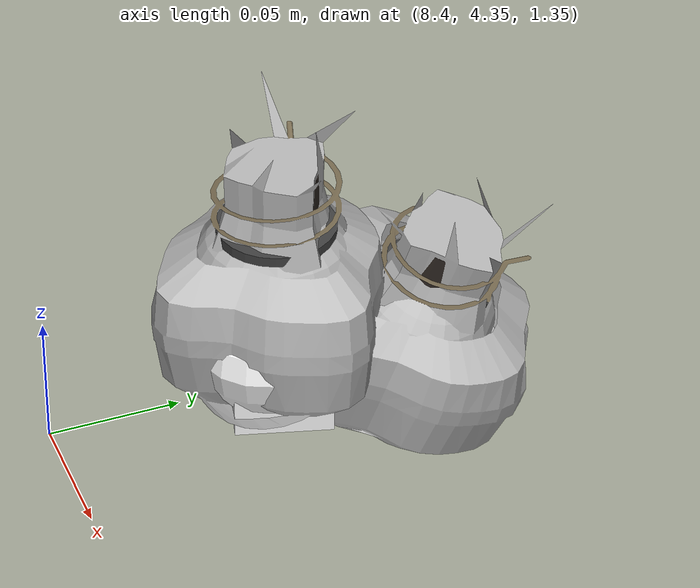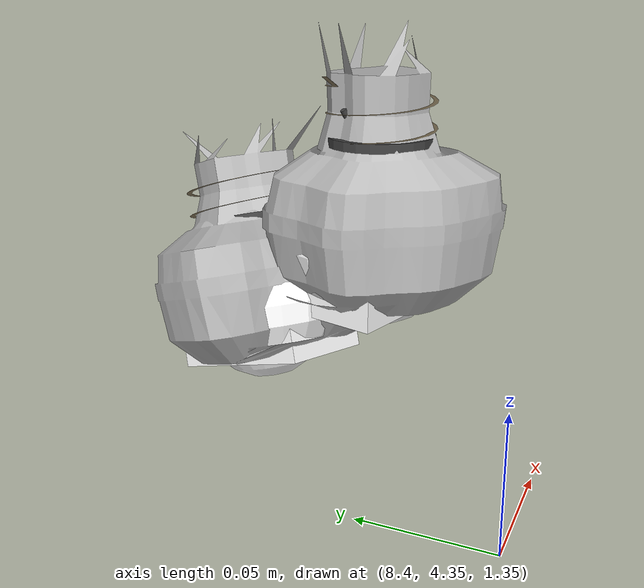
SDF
<sdf version="1.11">
 <world name="peach_orchard">
  <model name="ground">
   <static>true</static>
   <link name="link">
    <visual name="soil">
     <geometry><plane><normal>0 0 1</normal><size>32 22</size></plane></geometry>
     <material>
      <ambient>1 1 1 1</ambient>
      <diffuse>1 1 1 1</diffuse>
      <specular>0.1 0.1 0.1 1</specular>
      <pbr>
       <metal>
        <albedo_map>textures/soil_albedo.png</albedo_map>
        <normal_map type="tangent">textures/soil_normal.png</normal_map>
        <roughness>0.95</roughness>
        <metalness>0</metalness>
       </metal>
      </pbr>
     </material>
    </visual>
    <collision name="c_soil">
     <geometry><plane><normal>0 0 1</normal><size>32 22</size></plane></geometry>
    </collision>
   </link>
  </model>
  <model name="peach_tree_r4_t5_05">
   <pose>8.45399 4.45804 1.3775 0 0.3175 0.92941</pose>
   <static>true</static>
   <link name="bag">
    <visual name="bag_mesh">
     <pose>0 0 0.0413634 0 0 0</pose>
     <geometry>
      <mesh><uri>model://peach_sim/meshes/bagged_peach.glb</uri><scale>1.07259 1.2689 0.940077</scale></mesh>
     </geometry>
    </visual>
    <visual name="body">
     <pose>0 0 0.0233634 0 0 0</pose>
     <geometry><ellipsoid><radii>0.040222 0.0329913 0.0252325</radii></ellipsoid></geometry>
     <material>
      <ambient>1 1 1 1</ambient>
      <diffuse>1 1 1 1</diffuse>
      <specular>0.1 0.1 0.1 1</specular>
      <pbr>
       <metal>
        <albedo_map>textures/paper_bag_albedo.png</albedo_map>
        <normal_map type="tangent">textures/paper_bag_normal.png</normal_map>
        <roughness>0.72</roughness>
        <metalness>0</metalness>
       </metal>
      </pbr>
     </material>
    </visual>
    <visual name="bottom_fold">
     <pose>0 0 0.012 0 0 0.35</pose>
     <geometry><box><size>0.0623441 0.03794 0.022</size></box></geometry>
     <material>
      <ambient>1 1 1 1</ambient>
      <diffuse>1 1 1 1</diffuse>
      <specular>0.1 0.1 0.1 1</specular>
      <pbr>
       <metal>
        <albedo_map>textures/paper_bag_albedo.png</albedo_map>
        <normal_map type="tangent">textures/paper_bag_normal.png</normal_map>
        <roughness>0.8</roughness>
        <metalness>0</metalness>
       </metal>
      </pbr>
     </material>
    </visual>
    <visual name="fruit">
     <pose>0 0 0.0197686 0 0 0</pose>
     <geometry><sphere><radius>0.0267994</radius></sphere></geometry>
     <material>
      <ambient>1 1 1 1</ambient>
      <diffuse>1 1 1 1</diffuse>
      <specular>0.1 0.1 0.1 1</specular>
      <pbr>
       <metal>
        <albedo_map>textures/fruit_skin_albedo.png</albedo_map>
        <normal_map type="tangent">textures/fruit_skin_normal.png</normal_map>
        <roughness>0.55</roughness>
        <metalness>0</metalness>
       </metal>
      </pbr>
     </material>
    </visual>
    <visual name="neck">
     <pose>0 0 0.0557268 0 0 0</pose>
     <geometry><cylinder><radius>0.013</radius><length>0.018</length></cylinder></geometry>
     <material>
      <ambient>1 1 1 1</ambient>
      <diffuse>1 1 1 1</diffuse>
      <specular>0.1 0.1 0.1 1</specular>
      <pbr>
       <metal>
        <albedo_map>textures/paper_bag_albedo.png</albedo_map>
        <normal_map type="tangent">textures/paper_bag_normal.png</normal_map>
        <roughness>0.75</roughness>
        <metalness>0</metalness>
       </metal>
      </pbr>
     </material>
    </visual>
    <visual name="gather">
     <pose>0 0 0.0367268 0 0 0</pose>
     <geometry><cylinder><radius>0.019</radius><length>0.02</length></cylinder></geometry>
     <material>
      <ambient>1 1 1 1</ambient>
      <diffuse>1 1 1 1</diffuse>
      <specular>0.1 0.1 0.1 1</specular>
      <pbr>
       <metal>
        <albedo_map>textures/paper_bag_albedo.png</albedo_map>
        <normal_map type="tangent">textures/paper_bag_normal.png</normal_map>
        <roughness>0.8</roughness>
        <metalness>0</metalness>
       </metal>
      </pbr>
     </material>
    </visual>
    <visual name="inner_paper">
     <pose>0 0 0.0607268 0 0 0</pose>
     <geometry><cylinder><radius>0.01</radius><length>0.008</length></cylinder></geometry>
     <material>
      <ambient>0.180392 0.14902 0.133333 1</ambient>
      <diffuse>0.180392 0.14902 0.133333 1</diffuse>
      <specular>0.1 0.1 0.1 1</specular>
     </material>
    </visual>
    <visual name="wire_0">
     <pose>0 0 0.0507268 0 0 0</pose>
     <geometry><cylinder><radius>0.0205</radius><length>0.0035</length></cylinder></geometry>
     <material>
      <ambient>0.25 0.25 0.25 1</ambient>
      <diffuse>0.25 0.25 0.25 1</diffuse>
      <specular>0.1 0.1 0.1 1</specular>
     </material>
    </visual>
    <visual name="wire_1">
     <pose>0 0 0.0577268 0 0 0</pose>
     <geometry><cylinder><radius>0.0205</radius><length>0.0035</length></cylinder></geometry>
     <material>
      <ambient>0.25 0.25 0.25 1</ambient>
      <diffuse>0.25 0.25 0.25 1</diffuse>
      <specular>0.1 0.1 0.1 1</specular>
     </material>
    </visual>
    <visual name="wire_tail">
     <pose>0.01 0 0.0587268 0 0.521618 0</pose>
     <geometry><cylinder><radius>0.0012</radius><length>0.026</length></cylinder></geometry>
     <material>
      <ambient>0.25 0.25 0.25 1</ambient>
      <diffuse>0.25 0.25 0.25 1</diffuse>
      <specular>0.1 0.1 0.1 1</specular>
     </material>
    </visual>
    <collision name="c_body">
     <pose>0 0 0.0233634 0 0 0</pose>
     <geometry><cylinder><radius>0.040222</radius><length>0.0467268</length></cylinder></geometry>
    </collision>
   </link>
  </model>
  <model name="peach_tree_r4_t5_06">
   <pose>8.46333 4.41544 1.40481 0 0.0109993 2.52094</pose>
   <static>true</static>
   <link name="bag">
    <visual name="bag_mesh">
     <pose>0 0 0.0448451 0 0 0</pose>
     <geometry>
      <mesh><uri>model://peach_sim/meshes/bagged_peach.glb</uri><scale>1.04576 1.13003 1.01921</scale></mesh>
     </geometry>
    </visual>
    <visual name="body">
     <pose>0 0 0.0268451 0 0 0</pose>
     <geometry><ellipsoid><radii>0.039216 0.0293809 0.0289927</radii></ellipsoid></geometry>
     <material>
      <ambient>1 1 1 1</ambient>
      <diffuse>1 1 1 1</diffuse>
      <specular>0.1 0.1 0.1 1</specular>
      <pbr>
       <metal>
        <albedo_map>textures/paper_bag_albedo.png</albedo_map>
        <normal_map type="tangent">textures/paper_bag_normal.png</normal_map>
        <roughness>0.72</roughness>
        <metalness>0</metalness>
       </metal>
      </pbr>
     </material>
    </visual>
    <visual name="bottom_fold">
     <pose>0 0 0.012 0 0 0.35</pose>
     <geometry><box><size>0.0607848 0.033788 0.022</size></box></geometry>
     <material>
      <ambient>1 1 1 1</ambient>
      <diffuse>1 1 1 1</diffuse>
      <specular>0.1 0.1 0.1 1</specular>
      <pbr>
       <metal>
        <albedo_map>textures/paper_bag_albedo.png</albedo_map>
        <normal_map type="tangent">textures/paper_bag_normal.png</normal_map>
        <roughness>0.8</roughness>
        <metalness>0</metalness>
       </metal>
      </pbr>
     </material>
    </visual>
    <visual name="fruit">
     <pose>0 0 0.0195773 0 0 0</pose>
     <geometry><sphere><radius>0.0266004</radius></sphere></geometry>
     <material>
      <ambient>1 1 1 1</ambient>
      <diffuse>1 1 1 1</diffuse>
      <specular>0.1 0.1 0.1 1</specular>
      <pbr>
       <metal>
        <albedo_map>textures/fruit_skin_albedo.png</albedo_map>
        <normal_map type="tangent">textures/fruit_skin_normal.png</normal_map>
        <roughness>0.55</roughness>
        <metalness>0</metalness>
       </metal>
      </pbr>
     </material>
    </visual>
    <visual name="neck">
     <pose>0 0 0.0626902 0 0 0</pose>
     <geometry><cylinder><radius>0.013</radius><length>0.018</length></cylinder></geometry>
     <material>
      <ambient>1 1 1 1</ambient>
      <diffuse>1 1 1 1</diffuse>
      <specular>0.1 0.1 0.1 1</specular>
      <pbr>
       <metal>
        <albedo_map>textures/paper_bag_albedo.png</albedo_map>
        <normal_map type="tangent">textures/paper_bag_normal.png</normal_map>
        <roughness>0.75</roughness>
        <metalness>0</metalness>
       </metal>
      </pbr>
     </material>
    </visual>
    <visual name="gather">
     <pose>0 0 0.0436902 0 0 0</pose>
     <geometry><cylinder><radius>0.019</radius><length>0.02</length></cylinder></geometry>
     <material>
      <ambient>1 1 1 1</ambient>
      <diffuse>1 1 1 1</diffuse>
      <specular>0.1 0.1 0.1 1</specular>
      <pbr>
       <metal>
        <albedo_map>textures/paper_bag_albedo.png</albedo_map>
        <normal_map type="tangent">textures/paper_bag_normal.png</normal_map>
        <roughness>0.8</roughness>
        <metalness>0</metalness>
       </metal>
      </pbr>
     </material>
    </visual>
    <visual name="inner_paper">
     <pose>0 0 0.0676902 0 0 0</pose>
     <geometry><cylinder><radius>0.01</radius><length>0.008</length></cylinder></geometry>
     <material>
      <ambient>0.180392 0.14902 0.133333 1</ambient>
      <diffuse>0.180392 0.14902 0.133333 1</diffuse>
      <specular>0.1 0.1 0.1 1</specular>
     </material>
    </visual>
    <visual name="wire_0">
     <pose>0 0 0.0576902 0 0 0</pose>
     <geometry><cylinder><radius>0.0205</radius><length>0.0035</length></cylinder></geometry>
     <material>
      <ambient>0.25 0.25 0.25 1</ambient>
      <diffuse>0.25 0.25 0.25 1</diffuse>
      <specular>0.1 0.1 0.1 1</specular>
     </material>
    </visual>
    <visual name="wire_1">
     <pose>0 0 0.0646902 0 0 0</pose>
     <geometry><cylinder><radius>0.0205</radius><length>0.0035</length></cylinder></geometry>
     <material>
      <ambient>0.25 0.25 0.25 1</ambient>
      <diffuse>0.25 0.25 0.25 1</diffuse>
      <specular>0.1 0.1 0.1 1</specular>
     </material>
    </visual>
    <visual name="wire_tail">
     <pose>0.01 0 0.0656902 0 0.521618 0</pose>
     <geometry><cylinder><radius>0.0012</radius><length>0.026</length></cylinder></geometry>
     <material>
      <ambient>0.25 0.25 0.25 1</ambient>
      <diffuse>0.25 0.25 0.25 1</diffuse>
      <specular>0.1 0.1 0.1 1</specular>
     </material>
    </visual>
    <collision name="c_body">
     <pose>0 0 0.0268451 0 0 0</pose>
     <geometry><cylinder><radius>0.039216</radius><length>0.0536902</length></cylinder></geometry>
    </collision>
   </link>
  </model>
 </world>
</sdf>
